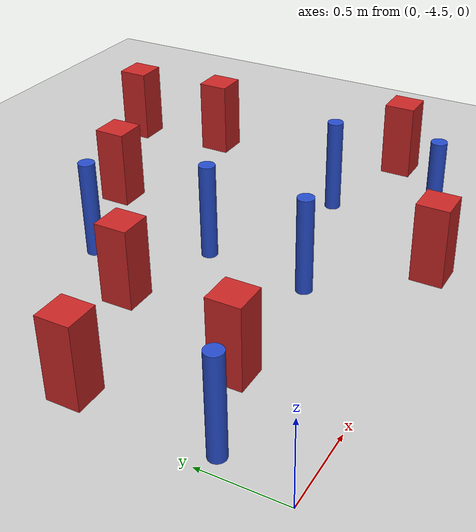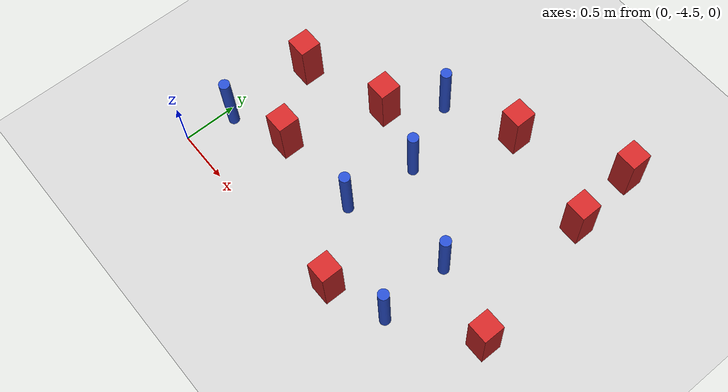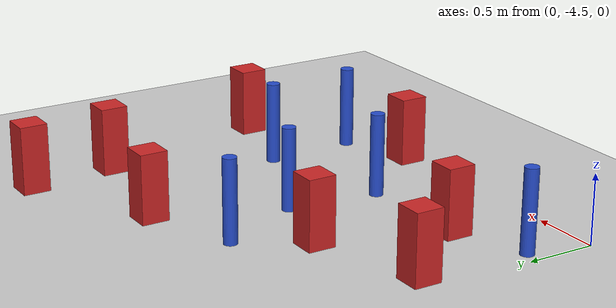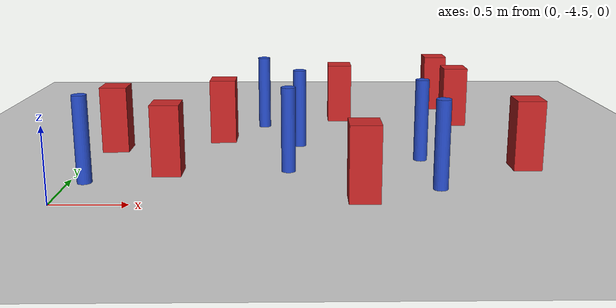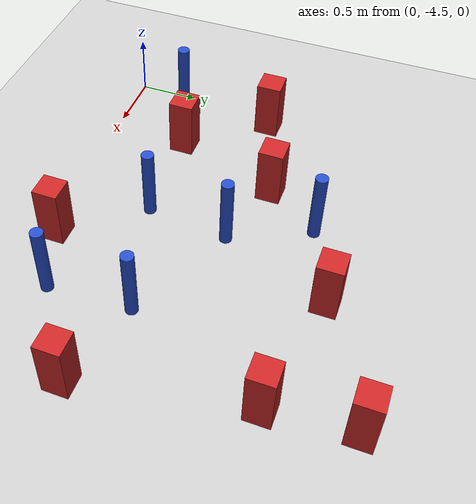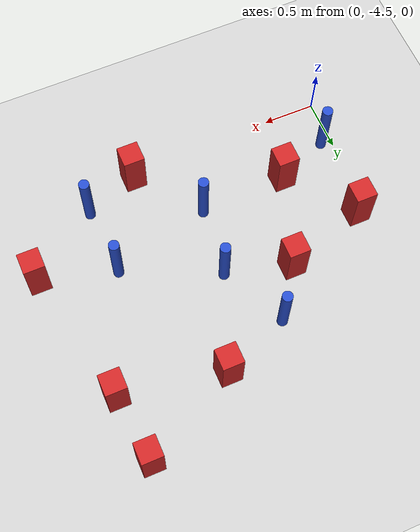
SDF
<sdf version="1.6">
 <world name="default">
  <model name="ground_plane">
   <static>1</static>
   <link name="link">
    <collision name="collision">
     <geometry><plane><normal>0 0 1</normal><size>100 100</size></plane></geometry>
     <surface><friction><ode><mu>100</mu><mu2>50</mu2></ode></friction></surface>
    </collision>
    <visual name="visual">
     <cast_shadows>0</cast_shadows>
     <geometry><plane><normal>0 0 1</normal><size>100 100</size></plane></geometry>
     <material>
      <ambient>1.0 1.0 1.0 1.0</ambient>
      <diffuse>0.8 0.8 0.8 1.0</diffuse>
      <specular>0.01 0.01 0.01 1.000000</specular>
     </material>
    </visual>
   </link>
  </model>
  <model name="square_post_obstacle28">
   <static>true</static>
   <pose>0.940068849063 -2.9750830167 8.22691968438e-08 7.2212513382e-06 -7.54495500217e-07 2.29674213826e-05</pose>
   <link name="link">
    <pose>0 0 0.25 0 -0 0</pose>
    <inertial>
     <mass>100</mass>
     <inertia>
      <ixx>0.166667</ixx>
      <ixy>0</ixy>
      <ixz>0</ixz>
      <iyy>0.166667</iyy>
      <iyz>0</iyz>
      <izz>0.166667</izz>
     </inertia>
    </inertial>
    <collision name="collision"><geometry><box><size>.2 .2 .5</size></box></geometry></collision>
    <visual name="visual">
     <geometry><box><size>.2 .2 .5</size></box></geometry>
     <material>
      <script><name>Gazebo/Red</name><uri>file://media/materials/scripts/gazebo.material</uri></script>
     </material>
    </visual>
   </link>
  </model>
  <model name="pole_obstacle35">
   <static>true</static>
   <pose>2.43488918313 -3.55542059706 2.88873142074e-08 -9.90536690232e-09 4.6021994898e-07 -1.20965994968e-07</pose>
   <link name="link">
    <pose>0 0 0.3 0 -0 0</pose>
    <inertial>
     <mass>1</mass>
     <inertia><ixx>0.145833</ixx><ixy>0</ixy><ixz>0</ixz><iyy>0.145833</iyy><iyz>0</iyz><izz>0.125</izz></inertia>
    </inertial>
    <collision name="collision">
     <geometry><cylinder><radius>0.05</radius><length>.6</length></cylinder></geometry>
    </collision>
    <visual name="visual">
     <geometry><cylinder><radius>0.05</radius><length>.6</length></cylinder></geometry>
     <material>
      <script><name>Gazebo/Blue</name><uri>file://media/materials/scripts/gazebo.material</uri></script>
     </material>
    </visual>
   </link>
  </model>
  <model name="square_post_obstacle34">
   <static>true</static>
   <pose>2.88535533772 -2.43999606591 8.22691968438e-08 7.2212513382e-06 -7.54495500217e-07 2.29674213826e-05</pose>
   <link name="link">
    <pose>0 0 0.25 0 -0 0</pose>
    <inertial>
     <mass>100</mass>
     <inertia>
      <ixx>0.166667</ixx>
      <ixy>0</ixy>
      <ixz>0</ixz>
      <iyy>0.166667</iyy>
      <iyz>0</iyz>
      <izz>0.166667</izz>
     </inertia>
    </inertial>
    <collision name="collision"><geometry><box><size>.2 .2 .5</size></box></geometry></collision>
    <visual name="visual">
     <geometry><box><size>.2 .2 .5</size></box></geometry>
     <material>
      <script><name>Gazebo/Red</name><uri>file://media/materials/scripts/gazebo.material</uri></script>
     </material>
    </visual>
   </link>
  </model>
  <model name="square_post_obstacle40">
   <static>true</static>
   <pose>0.144682610594 -3.23700005979 8.22691968438e-08 7.2212513382e-06 -7.54495500217e-07 2.29674213826e-05</pose>
   <link name="link">
    <pose>0 0 0.25 0 -0 0</pose>
    <inertial>
     <mass>100</mass>
     <inertia>
      <ixx>0.166667</ixx>
      <ixy>0</ixy>
      <ixz>0</ixz>
      <iyy>0.166667</iyy>
      <iyz>0</iyz>
      <izz>0.166667</izz>
     </inertia>
    </inertial>
    <collision name="collision"><geometry><box><size>.2 .2 .5</size></box></geometry></collision>
    <visual name="visual">
     <geometry><box><size>.2 .2 .5</size></box></geometry>
     <material>
      <script><name>Gazebo/Red</name><uri>file://media/materials/scripts/gazebo.material</uri></script>
     </material>
    </visual>
   </link>
  </model>
  <model name="square_post_obstacle59">
   <static>true</static>
   <pose>1.89852772511 -2.26323211245 8.22691968438e-08 7.2212513382e-06 -7.54495500217e-07 2.29674213826e-05</pose>
   <link name="link">
    <pose>0 0 0.25 0 -0 0</pose>
    <inertial>
     <mass>100</mass>
     <inertia>
      <ixx>0.166667</ixx>
      <ixy>0</ixy>
      <ixz>0</ixz>
      <iyy>0.166667</iyy>
      <iyz>0</iyz>
      <izz>0.166667</izz>
     </inertia>
    </inertial>
    <collision name="collision"><geometry><box><size>.2 .2 .5</size></box></geometry></collision>
    <visual name="visual">
     <geometry><box><size>.2 .2 .5</size></box></geometry>
     <material>
      <script><name>Gazebo/Red</name><uri>file://media/materials/scripts/gazebo.material</uri></script>
     </material>
    </visual>
   </link>
  </model>
  <model name="pole_obstacle100">
   <static>true</static>
   <pose>1.54686385424 -3.15064544547 2.88873142074e-08 -9.90536689791e-09 4.6021994899e-07 -1.20965994959e-07</pose>
   <link name="link">
    <pose>0 0 0.3 0 -0 0</pose>
    <inertial>
     <mass>1</mass>
     <inertia><ixx>0.145833</ixx><ixy>0</ixy><ixz>0</ixz><iyy>0.145833</iyy><iyz>0</iyz><izz>0.125</izz></inertia>
    </inertial>
    <collision name="collision">
     <geometry><cylinder><radius>0.05</radius><length>.6</length></cylinder></geometry>
    </collision>
    <visual name="visual">
     <geometry><cylinder><radius>0.05</radius><length>.6</length></cylinder></geometry>
     <material>
      <script><name>Gazebo/Blue</name><uri>file://media/materials/scripts/gazebo.material</uri></script>
     </material>
    </visual>
   </link>
  </model>
  <model name="square_post_obstacle92">
   <static>true</static>
   <pose>3.15054136979 -3.74901744311 8.22691968438e-08 7.2212513382e-06 -7.54495500217e-07 2.29674213826e-05</pose>
   <link name="link">
    <pose>0 0 0.25 0 -0 0</pose>
    <inertial>
     <mass>100</mass>
     <inertia>
      <ixx>0.166667</ixx>
      <ixy>0</ixy>
      <ixz>0</ixz>
      <iyy>0.166667</iyy>
      <iyz>0</iyz>
      <izz>0.166667</izz>
     </inertia>
    </inertial>
    <collision name="collision"><geometry><box><size>.2 .2 .5</size></box></geometry></collision>
    <visual name="visual">
     <geometry><box><size>.2 .2 .5</size></box></geometry>
     <material>
      <script><name>Gazebo/Red</name><uri>file://media/materials/scripts/gazebo.material</uri></script>
     </material>
    </visual>
   </link>
  </model>
  <model name="pole_obstacle111">
   <static>true</static>
   <pose>2.46610115731 -4.22277846501 2.88873142074e-08 -9.90536689859e-09 4.60219948989e-07 -1.20965994961e-07</pose>
   <link name="link">
    <pose>0 0 0.3 0 -0 0</pose>
    <inertial>
     <mass>1</mass>
     <inertia><ixx>0.145833</ixx><ixy>0</ixy><ixz>0</ixz><iyy>0.145833</iyy><iyz>0</iyz><izz>0.125</izz></inertia>
    </inertial>
    <collision name="collision">
     <geometry><cylinder><radius>0.05</radius><length>.6</length></cylinder></geometry>
    </collision>
    <visual name="visual">
     <geometry><cylinder><radius>0.05</radius><length>.6</length></cylinder></geometry>
     <material>
      <script><name>Gazebo/Blue</name><uri>file://media/materials/scripts/gazebo.material</uri></script>
     </material>
    </visual>
   </link>
  </model>
  <model name="pole_obstacle121">
   <static>true</static>
   <pose>1.46903074979 -3.82115608262 2.88873142074e-08 -9.90536689791e-09 4.6021994899e-07 -1.20965994959e-07</pose>
   <link name="link">
    <pose>0 0 0.3 0 -0 0</pose>
    <inertial>
     <mass>1</mass>
     <inertia><ixx>0.145833</ixx><ixy>0</ixy><ixz>0</ixz><iyy>0.145833</iyy><iyz>0</iyz><izz>0.125</izz></inertia>
    </inertial>
    <collision name="collision">
     <geometry><cylinder><radius>0.05</radius><length>.6</length></cylinder></geometry>
    </collision>
    <visual name="visual">
     <geometry><cylinder><radius>0.05</radius><length>.6</length></cylinder></geometry>
     <material>
      <script><name>Gazebo/Blue</name><uri>file://media/materials/scripts/gazebo.material</uri></script>
     </material>
    </visual>
   </link>
  </model>
  <model name="pole_obstacle158">
   <static>true</static>
   <pose>0.108047487518 -4.06046299516 2.88873142074e-08 -9.90536689742e-09 4.60219948992e-07 -1.2096599496e-07</pose>
   <link name="link">
    <pose>0 0 0.3 0 -0 0</pose>
    <inertial>
     <mass>1</mass>
     <inertia><ixx>0.145833</ixx><ixy>0</ixy><ixz>0</ixz><iyy>0.145833</iyy><iyz>0</iyz><izz>0.125</izz></inertia>
    </inertial>
    <collision name="collision">
     <geometry><cylinder><radius>0.05</radius><length>.6</length></cylinder></geometry>
    </collision>
    <visual name="visual">
     <geometry><cylinder><radius>0.05</radius><length>.6</length></cylinder></geometry>
     <material>
      <script><name>Gazebo/Blue</name><uri>file://media/materials/scripts/gazebo.material</uri></script>
     </material>
    </visual>
   </link>
  </model>
  <model name="square_post_obstacle154">
   <static>true</static>
   <pose>1.9492582182 -4.40971305928 8.22691968438e-08 7.2212513382e-06 -7.54495500217e-07 2.29674213826e-05</pose>
   <link name="link">
    <pose>0 0 0.25 0 -0 0</pose>
    <inertial>
     <mass>100</mass>
     <inertia>
      <ixx>0.166667</ixx>
      <ixy>0</ixy>
      <ixz>0</ixz>
      <iyy>0.166667</iyy>
      <iyz>0</iyz>
      <izz>0.166667</izz>
     </inertia>
    </inertial>
    <collision name="collision"><geometry><box><size>.2 .2 .5</size></box></geometry></collision>
    <visual name="visual">
     <geometry><box><size>.2 .2 .5</size></box></geometry>
     <material>
      <script><name>Gazebo/Red</name><uri>file://media/materials/scripts/gazebo.material</uri></script>
     </material>
    </visual>
   </link>
  </model>
  <model name="square_post_obstacle161">
   <static>true</static>
   <pose>0.634255326492 -3.84764798586 8.22691968438e-08 7.2212513382e-06 -7.54495500217e-07 2.29674213826e-05</pose>
   <link name="link">
    <pose>0 0 0.25 0 -0 0</pose>
    <inertial>
     <mass>100</mass>
     <inertia>
      <ixx>0.166667</ixx>
      <ixy>0</ixy>
      <ixz>0</ixz>
      <iyy>0.166667</iyy>
      <iyz>0</iyz>
      <izz>0.166667</izz>
     </inertia>
    </inertial>
    <collision name="collision"><geometry><box><size>.2 .2 .5</size></box></geometry></collision>
    <visual name="visual">
     <geometry><box><size>.2 .2 .5</size></box></geometry>
     <material>
      <script><name>Gazebo/Red</name><uri>file://media/materials/scripts/gazebo.material</uri></script>
     </material>
    </visual>
   </link>
  </model>
  <model name="square_post_obstacle198">
   <static>true</static>
   <pose>2.82110433624 -1.79528367063 8.22691968438e-08 7.2212513382e-06 -7.54495500217e-07 2.29674213826e-05</pose>
   <link name="link">
    <pose>0 0 0.25 0 -0 0</pose>
    <inertial>
     <mass>100</mass>
     <inertia>
      <ixx>0.166667</ixx>
      <ixy>0</ixy>
      <ixz>0</ixz>
      <iyy>0.166667</iyy>
      <iyz>0</iyz>
      <izz>0.166667</izz>
     </inertia>
    </inertial>
    <collision name="collision"><geometry><box><size>.2 .2 .5</size></box></geometry></collision>
    <visual name="visual">
     <geometry><box><size>.2 .2 .5</size></box></geometry>
     <material>
      <script><name>Gazebo/Red</name><uri>file://media/materials/scripts/gazebo.material</uri></script>
     </material>
    </visual>
   </link>
  </model>
  <model name="pole_obstacle211">
   <static>true</static>
   <pose>1.24457891434 -2.5249501224 2.88873142074e-08 -9.90536689791e-09 4.6021994899e-07 -1.20965994959e-07</pose>
   <link name="link">
    <pose>0 0 0.3 0 -0 0</pose>
    <inertial>
     <mass>1</mass>
     <inertia><ixx>0.145833</ixx><ixy>0</ixy><ixz>0</ixz><iyy>0.145833</iyy><iyz>0</iyz><izz>0.125</izz></inertia>
    </inertial>
    <collision name="collision">
     <geometry><cylinder><radius>0.05</radius><length>.6</length></cylinder></geometry>
    </collision>
    <visual name="visual">
     <geometry><cylinder><radius>0.05</radius><length>.6</length></cylinder></geometry>
     <material>
      <script><name>Gazebo/Blue</name><uri>file://media/materials/scripts/gazebo.material</uri></script>
     </material>
    </visual>
   </link>
  </model>
 </world>
</sdf>
